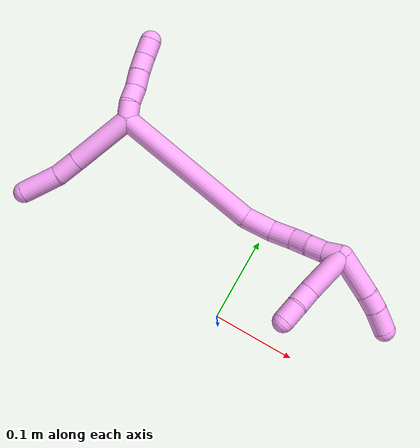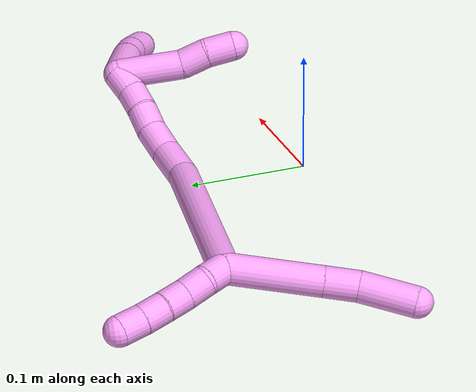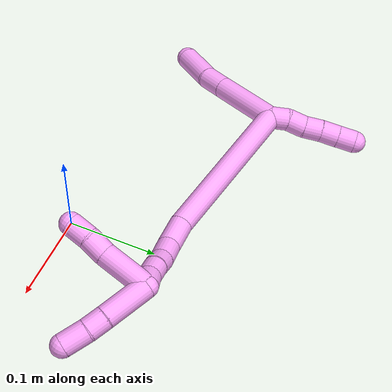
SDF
<sdf version="1.7">
 <world name="default">
  <model name="4">
   <static>0</static>
   <link name="4">
    <collision name="collision-cylinder-e_1_2_8">
     <pose>-0.009408 0.005322 -0.036533 -2.99694 -0.249535 2.09391</pose>
     <geometry><cylinder><radius>0.0125</radius><length>0.076197</length></cylinder></geometry>
     <surface>
      <friction><ode><mu>1.16</mu><mu2>1.16</mu2><slip1>0</slip1><slip2>0</slip2></ode></friction>
      <contact><ode><kp>1e+06</kp><kd>1</kd><max_vel>0</max_vel><min_depth>0.001</min_depth></ode></contact>
     </surface>
    </collision>
    <visual name="visual-cylinder-e_1_2_8">
     <pose>-0.009408 0.005322 -0.036533 -2.99694 -0.249535 2.09391</pose>
     <geometry><cylinder><radius>0.0125</radius><length>0.076197</length></cylinder></geometry>
     <material><ambient>1 0.65098 0.996078 1</ambient></material>
    </visual>
    <collision name="collision-cylinder-e_2_8_9">
     <pose>-0.022342 0.012481 -0.086254 -3.00317 -0.258755 2.16248</pose>
     <geometry><cylinder><radius>0.0125</radius><length>0.02755</length></cylinder></geometry>
     <surface>
      <friction><ode><mu>1.16</mu><mu2>1.16</mu2><slip1>0</slip1><slip2>0</slip2></ode></friction>
      <contact><ode><kp>1e+06</kp><kd>1</kd><max_vel>0</max_vel><min_depth>0.001</min_depth></ode></contact>
     </surface>
    </collision>
    <visual name="visual-cylinder-e_2_8_9">
     <pose>-0.022342 0.012481 -0.086254 -3.00317 -0.258755 2.16248</pose>
     <geometry><cylinder><radius>0.0125</radius><length>0.02755</length></cylinder></geometry>
     <material><ambient>1 0.65098 0.996078 1</ambient></material>
    </visual>
    <collision name="collision-cylinder-e_3_9_6">
     <pose>-0.036204 0.016364 -0.120029 -3.04251 -0.463422 2.72736</pose>
     <geometry><cylinder><radius>0.0125</radius><length>0.046254</length></cylinder></geometry>
     <surface>
      <friction><ode><mu>1.16</mu><mu2>1.16</mu2><slip1>0</slip1><slip2>0</slip2></ode></friction>
      <contact><ode><kp>1e+06</kp><kd>1</kd><max_vel>0</max_vel><min_depth>0.001</min_depth></ode></contact>
     </surface>
    </collision>
    <visual name="visual-cylinder-e_3_9_6">
     <pose>-0.036204 0.016364 -0.120029 -3.04251 -0.463422 2.72736</pose>
     <geometry><cylinder><radius>0.0125</radius><length>0.046254</length></cylinder></geometry>
     <material><ambient>1 0.65098 0.996078 1</ambient></material>
    </visual>
    <collision name="collision-cylinder-e_1_2_10">
     <pose>-0.005541 -0.001322 0.008219 0.159469 -0.587263 -0.048312</pose>
     <geometry><cylinder><radius>0.0125</radius><length>0.02</length></cylinder></geometry>
     <surface>
      <friction><ode><mu>1.16</mu><mu2>1.16</mu2><slip1>0</slip1><slip2>0</slip2></ode></friction>
      <contact><ode><kp>1e+06</kp><kd>1</kd><max_vel>0</max_vel><min_depth>0.001</min_depth></ode></contact>
     </surface>
    </collision>
    <visual name="visual-cylinder-e_1_2_10">
     <pose>-0.005541 -0.001322 0.008219 0.159469 -0.587263 -0.048312</pose>
     <geometry><cylinder><radius>0.0125</radius><length>0.02</length></cylinder></geometry>
     <material><ambient>1 0.65098 0.996078 1</ambient></material>
    </visual>
    <collision name="collision-cylinder-e_2_10_11">
     <pose>-0.015399 -0.00131 0.025359 -0.14836 -0.446414 0.033735</pose>
     <geometry><cylinder><radius>0.0125</radius><length>0.02</length></cylinder></geometry>
     <surface>
      <friction><ode><mu>1.16</mu><mu2>1.16</mu2><slip1>0</slip1><slip2>0</slip2></ode></friction>
      <contact><ode><kp>1e+06</kp><kd>1</kd><max_vel>0</max_vel><min_depth>0.001</min_depth></ode></contact>
     </surface>
    </collision>
    <visual name="visual-cylinder-e_2_10_11">
     <pose>-0.015399 -0.00131 0.025359 -0.14836 -0.446414 0.033735</pose>
     <geometry><cylinder><radius>0.0125</radius><length>0.02</length></cylinder></geometry>
     <material><ambient>1 0.65098 0.996078 1</ambient></material>
    </visual>
    <collision name="collision-cylinder-e_3_11_12">
     <pose>-0.024601 -0.00052 0.042989 0.062222 -0.510337 -0.016236</pose>
     <geometry><cylinder><radius>0.0125</radius><length>0.02</length></cylinder></geometry>
     <surface>
      <friction><ode><mu>1.16</mu><mu2>1.16</mu2><slip1>0</slip1><slip2>0</slip2></ode></friction>
      <contact><ode><kp>1e+06</kp><kd>1</kd><max_vel>0</max_vel><min_depth>0.001</min_depth></ode></contact>
     </surface>
    </collision>
    <visual name="visual-cylinder-e_3_11_12">
     <pose>-0.024601 -0.00052 0.042989 0.062222 -0.510337 -0.016236</pose>
     <geometry><cylinder><radius>0.0125</radius><length>0.02</length></cylinder></geometry>
     <material><ambient>1 0.65098 0.996078 1</ambient></material>
    </visual>
    <collision name="collision-cylinder-e_4_12_13">
     <pose>-0.033779 -0.000931 0.060728 -0.014575 -0.443761 0.003288</pose>
     <geometry><cylinder><radius>0.0125</radius><length>0.02</length></cylinder></geometry>
     <surface>
      <friction><ode><mu>1.16</mu><mu2>1.16</mu2><slip1>0</slip1><slip2>0</slip2></ode></friction>
      <contact><ode><kp>1e+06</kp><kd>1</kd><max_vel>0</max_vel><min_depth>0.001</min_depth></ode></contact>
     </surface>
    </collision>
    <visual name="visual-cylinder-e_4_12_13">
     <pose>-0.033779 -0.000931 0.060728 -0.014575 -0.443761 0.003288</pose>
     <geometry><cylinder><radius>0.0125</radius><length>0.02</length></cylinder></geometry>
     <material><ambient>1 0.65098 0.996078 1</ambient></material>
    </visual>
    <collision name="collision-cylinder-e_5_13_5">
     <pose>-0.041911 -0.001119 0.078987 0.034615 -0.393914 -0.006908</pose>
     <geometry><cylinder><radius>0.0125</radius><length>0.02</length></cylinder></geometry>
     <surface>
      <friction><ode><mu>1.16</mu><mu2>1.16</mu2><slip1>0</slip1><slip2>0</slip2></ode></friction>
      <contact><ode><kp>1e+06</kp><kd>1</kd><max_vel>0</max_vel><min_depth>0.001</min_depth></ode></contact>
     </surface>
    </collision>
    <visual name="visual-cylinder-e_5_13_5">
     <pose>-0.041911 -0.001119 0.078987 0.034615 -0.393914 -0.006908</pose>
     <geometry><cylinder><radius>0.0125</radius><length>0.02</length></cylinder></geometry>
     <material><ambient>1 0.65098 0.996078 1</ambient></material>
    </visual>
    <collision name="collision-cylinder-e_1_2_14">
     <pose>0.080152 0.03526 0.003339 -1.47639 1.15472 -1.06998</pose>
     <geometry><cylinder><radius>0.0125</radius><length>0.175257</length></cylinder></geometry>
     <surface>
      <friction><ode><mu>1.16</mu><mu2>1.16</mu2><slip1>0</slip1><slip2>0</slip2></ode></friction>
      <contact><ode><kp>1e+06</kp><kd>1</kd><max_vel>0</max_vel><min_depth>0.001</min_depth></ode></contact>
     </surface>
    </collision>
    <visual name="visual-cylinder-e_1_2_14">
     <pose>0.080152 0.03526 0.003339 -1.47639 1.15472 -1.06998</pose>
     <geometry><cylinder><radius>0.0125</radius><length>0.175257</length></cylinder></geometry>
     <material><ambient>1 0.65098 0.996078 1</ambient></material>
    </visual>
    <collision name="collision-cylinder-e_2_14_15">
     <pose>0.17683 0.074133 0.010859 -0.712552 1.24804 -0.523603</pose>
     <geometry><cylinder><radius>0.0125</radius><length>0.034851</length></cylinder></geometry>
     <surface>
      <friction><ode><mu>1.16</mu><mu2>1.16</mu2><slip1>0</slip1><slip2>0</slip2></ode></friction>
      <contact><ode><kp>1e+06</kp><kd>1</kd><max_vel>0</max_vel><min_depth>0.001</min_depth></ode></contact>
     </surface>
    </collision>
    <visual name="visual-cylinder-e_2_14_15">
     <pose>0.17683 0.074133 0.010859 -0.712552 1.24804 -0.523603</pose>
     <geometry><cylinder><radius>0.0125</radius><length>0.034851</length></cylinder></geometry>
     <material><ambient>1 0.65098 0.996078 1</ambient></material>
    </visual>
    <collision name="collision-cylinder-e_3_15_16">
     <pose>0.206334 0.077006 0.019215 0.175441 1.25515 0.127421</pose>
     <geometry><cylinder><radius>0.0125</radius><length>0.027306</length></cylinder></geometry>
     <surface>
      <friction><ode><mu>1.16</mu><mu2>1.16</mu2><slip1>0</slip1><slip2>0</slip2></ode></friction>
      <contact><ode><kp>1e+06</kp><kd>1</kd><max_vel>0</max_vel><min_depth>0.001</min_depth></ode></contact>
     </surface>
    </collision>
    <visual name="visual-cylinder-e_3_15_16">
     <pose>0.206334 0.077006 0.019215 0.175441 1.25515 0.127421</pose>
     <geometry><cylinder><radius>0.0125</radius><length>0.027306</length></cylinder></geometry>
     <material><ambient>1 0.65098 0.996078 1</ambient></material>
    </visual>
    <collision name="collision-cylinder-e_4_16_17">
     <pose>0.229431 0.073669 0.02572 0.839321 1.23858 0.615856</pose>
     <geometry><cylinder><radius>0.0125</radius><length>0.021406</length></cylinder></geometry>
     <surface>
      <friction><ode><mu>1.16</mu><mu2>1.16</mu2><slip1>0</slip1><slip2>0</slip2></ode></friction>
      <contact><ode><kp>1e+06</kp><kd>1</kd><max_vel>0</max_vel><min_depth>0.001</min_depth></ode></contact>
     </surface>
    </collision>
    <visual name="visual-cylinder-e_4_16_17">
     <pose>0.229431 0.073669 0.02572 0.839321 1.23858 0.615856</pose>
     <geometry><cylinder><radius>0.0125</radius><length>0.021406</length></cylinder></geometry>
     <material><ambient>1 0.65098 0.996078 1</ambient></material>
    </visual>
    <collision name="collision-cylinder-e_5_17_18">
     <pose>0.249361 0.069978 0.03072 0.388575 1.28499 0.292434</pose>
     <geometry><cylinder><radius>0.0125</radius><length>0.020456</length></cylinder></geometry>
     <surface>
      <friction><ode><mu>1.16</mu><mu2>1.16</mu2><slip1>0</slip1><slip2>0</slip2></ode></friction>
      <contact><ode><kp>1e+06</kp><kd>1</kd><max_vel>0</max_vel><min_depth>0.001</min_depth></ode></contact>
     </surface>
    </collision>
    <visual name="visual-cylinder-e_5_17_18">
     <pose>0.249361 0.069978 0.03072 0.388575 1.28499 0.292434</pose>
     <geometry><cylinder><radius>0.0125</radius><length>0.020456</length></cylinder></geometry>
     <material><ambient>1 0.65098 0.996078 1</ambient></material>
    </visual>
    <collision name="collision-cylinder-e_6_18_1">
     <pose>0.268407 0.066798 0.037606 0.459795 1.09942 0.284848</pose>
     <geometry><cylinder><radius>0.0125</radius><length>0.020724</length></cylinder></geometry>
     <surface>
      <friction><ode><mu>1.16</mu><mu2>1.16</mu2><slip1>0</slip1><slip2>0</slip2></ode></friction>
      <contact><ode><kp>1e+06</kp><kd>1</kd><max_vel>0</max_vel><min_depth>0.001</min_depth></ode></contact>
     </surface>
    </collision>
    <visual name="visual-cylinder-e_6_18_1">
     <pose>0.268407 0.066798 0.037606 0.459795 1.09942 0.284848</pose>
     <geometry><cylinder><radius>0.0125</radius><length>0.020724</length></cylinder></geometry>
     <material><ambient>1 0.65098 0.996078 1</ambient></material>
    </visual>
    <collision name="collision-cylinder-e_1_1_19">
     <pose>0.298908 0.077378 0.035646 -2.02441 0.9856 -1.41962</pose>
     <geometry><cylinder><radius>0.0125</radius><length>0.05103</length></cylinder></geometry>
     <surface>
      <friction><ode><mu>1.16</mu><mu2>1.16</mu2><slip1>0</slip1><slip2>0</slip2></ode></friction>
      <contact><ode><kp>1e+06</kp><kd>1</kd><max_vel>0</max_vel><min_depth>0.001</min_depth></ode></contact>
     </surface>
    </collision>
    <visual name="visual-cylinder-e_1_1_19">
     <pose>0.298908 0.077378 0.035646 -2.02441 0.9856 -1.41962</pose>
     <geometry><cylinder><radius>0.0125</radius><length>0.05103</length></cylinder></geometry>
     <material><ambient>1 0.65098 0.996078 1</ambient></material>
    </visual>
    <collision name="collision-cylinder-e_2_19_20">
     <pose>0.32854 0.095746 0.026498 -2.05141 0.915437 -1.3645</pose>
     <geometry><cylinder><radius>0.0125</radius><length>0.021097</length></cylinder></geometry>
     <surface>
      <friction><ode><mu>1.16</mu><mu2>1.16</mu2><slip1>0</slip1><slip2>0</slip2></ode></friction>
      <contact><ode><kp>1e+06</kp><kd>1</kd><max_vel>0</max_vel><min_depth>0.001</min_depth></ode></contact>
     </surface>
    </collision>
    <visual name="visual-cylinder-e_2_19_20">
     <pose>0.32854 0.095746 0.026498 -2.05141 0.915437 -1.3645</pose>
     <geometry><cylinder><radius>0.0125</radius><length>0.021097</length></cylinder></geometry>
     <material><ambient>1 0.65098 0.996078 1</ambient></material>
    </visual>
    <collision name="collision-cylinder-e_3_20_4">
     <pose>0.347005 0.109421 0.018178 -2.16158 0.810771 -1.35504</pose>
     <geometry><cylinder><radius>0.0125</radius><length>0.027873</length></cylinder></geometry>
     <surface>
      <friction><ode><mu>1.16</mu><mu2>1.16</mu2><slip1>0</slip1><slip2>0</slip2></ode></friction>
      <contact><ode><kp>1e+06</kp><kd>1</kd><max_vel>0</max_vel><min_depth>0.001</min_depth></ode></contact>
     </surface>
    </collision>
    <visual name="visual-cylinder-e_3_20_4">
     <pose>0.347005 0.109421 0.018178 -2.16158 0.810771 -1.35504</pose>
     <geometry><cylinder><radius>0.0125</radius><length>0.027873</length></cylinder></geometry>
     <material><ambient>1 0.65098 0.996078 1</ambient></material>
    </visual>
    <collision name="collision-cylinder-e_1_1_21">
     <pose>0.276762 0.063376 0.014934 3.09203 -0.03254 -1.16173</pose>
     <geometry><cylinder><radius>0.0125</radius><length>0.053872</length></cylinder></geometry>
     <surface>
      <friction><ode><mu>1.16</mu><mu2>1.16</mu2><slip1>0</slip1><slip2>0</slip2></ode></friction>
      <contact><ode><kp>1e+06</kp><kd>1</kd><max_vel>0</max_vel><min_depth>0.001</min_depth></ode></contact>
     </surface>
    </collision>
    <visual name="visual-cylinder-e_1_1_21">
     <pose>0.276762 0.063376 0.014934 3.09203 -0.03254 -1.16173</pose>
     <geometry><cylinder><radius>0.0125</radius><length>0.053872</length></cylinder></geometry>
     <material><ambient>1 0.65098 0.996078 1</ambient></material>
    </visual>
    <collision name="collision-cylinder-e_2_21_22">
     <pose>0.276872 0.058352 -0.022736 2.81186 0.086281 0.507712</pose>
     <geometry><cylinder><radius>0.0125</radius><length>0.022876</length></cylinder></geometry>
     <surface>
      <friction><ode><mu>1.16</mu><mu2>1.16</mu2><slip1>0</slip1><slip2>0</slip2></ode></friction>
      <contact><ode><kp>1e+06</kp><kd>1</kd><max_vel>0</max_vel><min_depth>0.001</min_depth></ode></contact>
     </surface>
    </collision>
    <visual name="visual-cylinder-e_2_21_22">
     <pose>0.276872 0.058352 -0.022736 2.81186 0.086281 0.507712</pose>
     <geometry><cylinder><radius>0.0125</radius><length>0.022876</length></cylinder></geometry>
     <material><ambient>1 0.65098 0.996078 1</ambient></material>
    </visual>
    <collision name="collision-cylinder-e_3_22_3">
     <pose>0.278314 0.053076 -0.045026 3.00459 0.039321 0.558228</pose>
     <geometry><cylinder><radius>0.0125</radius><length>0.023252</length></cylinder></geometry>
     <surface>
      <friction><ode><mu>1.16</mu><mu2>1.16</mu2><slip1>0</slip1><slip2>0</slip2></ode></friction>
      <contact><ode><kp>1e+06</kp><kd>1</kd><max_vel>0</max_vel><min_depth>0.001</min_depth></ode></contact>
     </surface>
    </collision>
    <visual name="visual-cylinder-e_3_22_3">
     <pose>0.278314 0.053076 -0.045026 3.00459 0.039321 0.558228</pose>
     <geometry><cylinder><radius>0.0125</radius><length>0.023252</length></cylinder></geometry>
     <material><ambient>1 0.65098 0.996078 1</ambient></material>
    </visual>
    <collision name="collision-sphere-3">
     <pose>0.278771 0.051489 -0.056534 0 -0 0</pose>
     <geometry><sphere><radius>0.0125</radius></sphere></geometry>
     <surface>
      <friction><ode><mu>1.16</mu><mu2>1.16</mu2><slip1>0</slip1><slip2>0</slip2></ode></friction>
      <contact><ode><kp>1e+06</kp><kd>1</kd><max_vel>0</max_vel><min_depth>0.001</min_depth></ode></contact>
     </surface>
    </collision>
    <visual name="visual-sphere-3">
     <pose>0.278771 0.051489 -0.056534 0 -0 0</pose>
     <geometry><sphere><radius>0.0125</radius></sphere></geometry>
     <material><ambient>1 0.65098 0.996078 1</ambient></material>
    </visual>
    <collision name="collision-sphere-22">
     <pose>0.277857 0.054662 -0.033518 0 -0 0</pose>
     <geometry><sphere><radius>0.0125</radius></sphere></geometry>
     <surface>
      <friction><ode><mu>1.16</mu><mu2>1.16</mu2><slip1>0</slip1><slip2>0</slip2></ode></friction>
      <contact><ode><kp>1e+06</kp><kd>1</kd><max_vel>0</max_vel><min_depth>0.001</min_depth></ode></contact>
     </surface>
    </collision>
    <visual name="visual-sphere-22">
     <pose>0.277857 0.054662 -0.033518 0 -0 0</pose>
     <geometry><sphere><radius>0.0125</radius></sphere></geometry>
     <material><ambient>1 0.65098 0.996078 1</ambient></material>
    </visual>
    <collision name="collision-sphere-21">
     <pose>0.275886 0.062042 -0.011955 0 -0 0</pose>
     <geometry><sphere><radius>0.0125</radius></sphere></geometry>
     <surface>
      <friction><ode><mu>1.16</mu><mu2>1.16</mu2><slip1>0</slip1><slip2>0</slip2></ode></friction>
      <contact><ode><kp>1e+06</kp><kd>1</kd><max_vel>0</max_vel><min_depth>0.001</min_depth></ode></contact>
     </surface>
    </collision>
    <visual name="visual-sphere-21">
     <pose>0.275886 0.062042 -0.011955 0 -0 0</pose>
     <geometry><sphere><radius>0.0125</radius></sphere></geometry>
     <material><ambient>1 0.65098 0.996078 1</ambient></material>
    </visual>
    <collision name="collision-sphere-4">
     <pose>0.357106 0.117395 0.01283 0 -0 0</pose>
     <geometry><sphere><radius>0.0125</radius></sphere></geometry>
     <surface>
      <friction><ode><mu>1.16</mu><mu2>1.16</mu2><slip1>0</slip1><slip2>0</slip2></ode></friction>
      <contact><ode><kp>1e+06</kp><kd>1</kd><max_vel>0</max_vel><min_depth>0.001</min_depth></ode></contact>
     </surface>
    </collision>
    <visual name="visual-sphere-4">
     <pose>0.357106 0.117395 0.01283 0 -0 0</pose>
     <geometry><sphere><radius>0.0125</radius></sphere></geometry>
     <material><ambient>1 0.65098 0.996078 1</ambient></material>
    </visual>
    <collision name="collision-sphere-20">
     <pose>0.336903 0.101447 0.023526 0 -0 0</pose>
     <geometry><sphere><radius>0.0125</radius></sphere></geometry>
     <surface>
      <friction><ode><mu>1.16</mu><mu2>1.16</mu2><slip1>0</slip1><slip2>0</slip2></ode></friction>
      <contact><ode><kp>1e+06</kp><kd>1</kd><max_vel>0</max_vel><min_depth>0.001</min_depth></ode></contact>
     </surface>
    </collision>
    <visual name="visual-sphere-20">
     <pose>0.336903 0.101447 0.023526 0 -0 0</pose>
     <geometry><sphere><radius>0.0125</radius></sphere></geometry>
     <material><ambient>1 0.65098 0.996078 1</ambient></material>
    </visual>
    <collision name="collision-sphere-11">
     <pose>-0.019716 2.3e-05 0.03428 0 -0 0</pose>
     <geometry><sphere><radius>0.0125</radius></sphere></geometry>
     <surface>
      <friction><ode><mu>1.16</mu><mu2>1.16</mu2><slip1>0</slip1><slip2>0</slip2></ode></friction>
      <contact><ode><kp>1e+06</kp><kd>1</kd><max_vel>0</max_vel><min_depth>0.001</min_depth></ode></contact>
     </surface>
    </collision>
    <visual name="visual-sphere-11">
     <pose>-0.019716 2.3e-05 0.03428 0 -0 0</pose>
     <geometry><sphere><radius>0.0125</radius></sphere></geometry>
     <material><ambient>1 0.65098 0.996078 1</ambient></material>
    </visual>
    <collision name="collision-sphere-10">
     <pose>-0.011082 -0.002644 0.016438 0 -0 0</pose>
     <geometry><sphere><radius>0.0125</radius></sphere></geometry>
     <surface>
      <friction><ode><mu>1.16</mu><mu2>1.16</mu2><slip1>0</slip1><slip2>0</slip2></ode></friction>
      <contact><ode><kp>1e+06</kp><kd>1</kd><max_vel>0</max_vel><min_depth>0.001</min_depth></ode></contact>
     </surface>
    </collision>
    <visual name="visual-sphere-10">
     <pose>-0.011082 -0.002644 0.016438 0 -0 0</pose>
     <geometry><sphere><radius>0.0125</radius></sphere></geometry>
     <material><ambient>1 0.65098 0.996078 1</ambient></material>
    </visual>
    <collision name="collision-sphere-6">
     <pose>-0.046542 0.018411 -0.140616 0 -0 0</pose>
     <geometry><sphere><radius>0.0125</radius></sphere></geometry>
     <surface>
      <friction><ode><mu>1.16</mu><mu2>1.16</mu2><slip1>0</slip1><slip2>0</slip2></ode></friction>
      <contact><ode><kp>1e+06</kp><kd>1</kd><max_vel>0</max_vel><min_depth>0.001</min_depth></ode></contact>
     </surface>
    </collision>
    <visual name="visual-sphere-6">
     <pose>-0.046542 0.018411 -0.140616 0 -0 0</pose>
     <geometry><sphere><radius>0.0125</radius></sphere></geometry>
     <material><ambient>1 0.65098 0.996078 1</ambient></material>
    </visual>
    <collision name="collision-sphere-9">
     <pose>-0.025866 0.014318 -0.099443 0 -0 0</pose>
     <geometry><sphere><radius>0.0125</radius></sphere></geometry>
     <surface>
      <friction><ode><mu>1.16</mu><mu2>1.16</mu2><slip1>0</slip1><slip2>0</slip2></ode></friction>
      <contact><ode><kp>1e+06</kp><kd>1</kd><max_vel>0</max_vel><min_depth>0.001</min_depth></ode></contact>
     </surface>
    </collision>
    <visual name="visual-sphere-9">
     <pose>-0.025866 0.014318 -0.099443 0 -0 0</pose>
     <geometry><sphere><radius>0.0125</radius></sphere></geometry>
     <material><ambient>1 0.65098 0.996078 1</ambient></material>
    </visual>
    <collision name="collision-sphere-2">
     <geometry><sphere><radius>0.0125</radius></sphere></geometry>
     <surface>
      <friction><ode><mu>1.16</mu><mu2>1.16</mu2><slip1>0</slip1><slip2>0</slip2></ode></friction>
      <contact><ode><kp>1e+06</kp><kd>1</kd><max_vel>0</max_vel><min_depth>0.001</min_depth></ode></contact>
     </surface>
    </collision>
    <visual name="visual-sphere-2">
     <geometry><sphere><radius>0.0125</radius></sphere></geometry>
     <material><ambient>1 0.65098 0.996078 1</ambient></material>
    </visual>
    <collision name="collision-sphere-19">
     <pose>0.320177 0.090046 0.02947 0 -0 0</pose>
     <geometry><sphere><radius>0.0125</radius></sphere></geometry>
     <surface>
      <friction><ode><mu>1.16</mu><mu2>1.16</mu2><slip1>0</slip1><slip2>0</slip2></ode></friction>
      <contact><ode><kp>1e+06</kp><kd>1</kd><max_vel>0</max_vel><min_depth>0.001</min_depth></ode></contact>
     </surface>
    </collision>
    <visual name="visual-sphere-19">
     <pose>0.320177 0.090046 0.02947 0 -0 0</pose>
     <geometry><sphere><radius>0.0125</radius></sphere></geometry>
     <material><ambient>1 0.65098 0.996078 1</ambient></material>
    </visual>
    <collision name="collision-sphere-8">
     <pose>-0.018817 0.010643 -0.073065 0 -0 0</pose>
     <geometry><sphere><radius>0.0125</radius></sphere></geometry>
     <surface>
      <friction><ode><mu>1.16</mu><mu2>1.16</mu2><slip1>0</slip1><slip2>0</slip2></ode></friction>
      <contact><ode><kp>1e+06</kp><kd>1</kd><max_vel>0</max_vel><min_depth>0.001</min_depth></ode></contact>
     </surface>
    </collision>
    <visual name="visual-sphere-8">
     <pose>-0.018817 0.010643 -0.073065 0 -0 0</pose>
     <geometry><sphere><radius>0.0125</radius></sphere></geometry>
     <material><ambient>1 0.65098 0.996078 1</ambient></material>
    </visual>
    <collision name="collision-sphere-12">
     <pose>-0.029486 -0.001062 0.051698 0 -0 0</pose>
     <geometry><sphere><radius>0.0125</radius></sphere></geometry>
     <surface>
      <friction><ode><mu>1.16</mu><mu2>1.16</mu2><slip1>0</slip1><slip2>0</slip2></ode></friction>
      <contact><ode><kp>1e+06</kp><kd>1</kd><max_vel>0</max_vel><min_depth>0.001</min_depth></ode></contact>
     </surface>
    </collision>
    <visual name="visual-sphere-12">
     <pose>-0.029486 -0.001062 0.051698 0 -0 0</pose>
     <geometry><sphere><radius>0.0125</radius></sphere></geometry>
     <material><ambient>1 0.65098 0.996078 1</ambient></material>
    </visual>
    <collision name="collision-sphere-13">
     <pose>-0.038073 -0.000799 0.069759 0 -0 0</pose>
     <geometry><sphere><radius>0.0125</radius></sphere></geometry>
     <surface>
      <friction><ode><mu>1.16</mu><mu2>1.16</mu2><slip1>0</slip1><slip2>0</slip2></ode></friction>
      <contact><ode><kp>1e+06</kp><kd>1</kd><max_vel>0</max_vel><min_depth>0.001</min_depth></ode></contact>
     </surface>
    </collision>
    <visual name="visual-sphere-13">
     <pose>-0.038073 -0.000799 0.069759 0 -0 0</pose>
     <geometry><sphere><radius>0.0125</radius></sphere></geometry>
     <material><ambient>1 0.65098 0.996078 1</ambient></material>
    </visual>
    <collision name="collision-sphere-5">
     <pose>-0.045749 -0.001438 0.088216 0 -0 0</pose>
     <geometry><sphere><radius>0.0125</radius></sphere></geometry>
     <surface>
      <friction><ode><mu>1.16</mu><mu2>1.16</mu2><slip1>0</slip1><slip2>0</slip2></ode></friction>
      <contact><ode><kp>1e+06</kp><kd>1</kd><max_vel>0</max_vel><min_depth>0.001</min_depth></ode></contact>
     </surface>
    </collision>
    <visual name="visual-sphere-5">
     <pose>-0.045749 -0.001438 0.088216 0 -0 0</pose>
     <geometry><sphere><radius>0.0125</radius></sphere></geometry>
     <material><ambient>1 0.65098 0.996078 1</ambient></material>
    </visual>
    <collision name="collision-sphere-14">
     <pose>0.160305 0.070519 0.006677 0 -0 0</pose>
     <geometry><sphere><radius>0.0125</radius></sphere></geometry>
     <surface>
      <friction><ode><mu>1.16</mu><mu2>1.16</mu2><slip1>0</slip1><slip2>0</slip2></ode></friction>
      <contact><ode><kp>1e+06</kp><kd>1</kd><max_vel>0</max_vel><min_depth>0.001</min_depth></ode></contact>
     </surface>
    </collision>
    <visual name="visual-sphere-14">
     <pose>0.160305 0.070519 0.006677 0 -0 0</pose>
     <geometry><sphere><radius>0.0125</radius></sphere></geometry>
     <material><ambient>1 0.65098 0.996078 1</ambient></material>
    </visual>
    <collision name="collision-sphere-15">
     <pose>0.193356 0.077746 0.015042 0 -0 0</pose>
     <geometry><sphere><radius>0.0125</radius></sphere></geometry>
     <surface>
      <friction><ode><mu>1.16</mu><mu2>1.16</mu2><slip1>0</slip1><slip2>0</slip2></ode></friction>
      <contact><ode><kp>1e+06</kp><kd>1</kd><max_vel>0</max_vel><min_depth>0.001</min_depth></ode></contact>
     </surface>
    </collision>
    <visual name="visual-sphere-15">
     <pose>0.193356 0.077746 0.015042 0 -0 0</pose>
     <geometry><sphere><radius>0.0125</radius></sphere></geometry>
     <material><ambient>1 0.65098 0.996078 1</ambient></material>
    </visual>
    <collision name="collision-sphere-16">
     <pose>0.219313 0.076266 0.023388 0 -0 0</pose>
     <geometry><sphere><radius>0.0125</radius></sphere></geometry>
     <surface>
      <friction><ode><mu>1.16</mu><mu2>1.16</mu2><slip1>0</slip1><slip2>0</slip2></ode></friction>
      <contact><ode><kp>1e+06</kp><kd>1</kd><max_vel>0</max_vel><min_depth>0.001</min_depth></ode></contact>
     </surface>
    </collision>
    <visual name="visual-sphere-16">
     <pose>0.219313 0.076266 0.023388 0 -0 0</pose>
     <geometry><sphere><radius>0.0125</radius></sphere></geometry>
     <material><ambient>1 0.65098 0.996078 1</ambient></material>
    </visual>
    <collision name="collision-sphere-17">
     <pose>0.239548 0.071071 0.028051 0 -0 0</pose>
     <geometry><sphere><radius>0.0125</radius></sphere></geometry>
     <surface>
      <friction><ode><mu>1.16</mu><mu2>1.16</mu2><slip1>0</slip1><slip2>0</slip2></ode></friction>
      <contact><ode><kp>1e+06</kp><kd>1</kd><max_vel>0</max_vel><min_depth>0.001</min_depth></ode></contact>
     </surface>
    </collision>
    <visual name="visual-sphere-17">
     <pose>0.239548 0.071071 0.028051 0 -0 0</pose>
     <geometry><sphere><radius>0.0125</radius></sphere></geometry>
     <material><ambient>1 0.65098 0.996078 1</ambient></material>
    </visual>
    <collision name="collision-sphere-18">
     <pose>0.259175 0.068886 0.033389 0 -0 0</pose>
     <geometry><sphere><radius>0.0125</radius></sphere></geometry>
     <surface>
      <friction><ode><mu>1.16</mu><mu2>1.16</mu2><slip1>0</slip1><slip2>0</slip2></ode></friction>
      <contact><ode><kp>1e+06</kp><kd>1</kd><max_vel>0</max_vel><min_depth>0.001</min_depth></ode></contact>
     </surface>
    </collision>
    <visual name="visual-sphere-18">
     <pose>0.259175 0.068886 0.033389 0 -0 0</pose>
     <geometry><sphere><radius>0.0125</radius></sphere></geometry>
     <material><ambient>1 0.65098 0.996078 1</ambient></material>
    </visual>
    <collision name="collision-sphere-1">
     <pose>0.277639 0.06471 0.041822 0 -0 0</pose>
     <geometry><sphere><radius>0.0125</radius></sphere></geometry>
     <surface>
      <friction><ode><mu>1.16</mu><mu2>1.16</mu2><slip1>0</slip1><slip2>0</slip2></ode></friction>
      <contact><ode><kp>1e+06</kp><kd>1</kd><max_vel>0</max_vel><min_depth>0.001</min_depth></ode></contact>
     </surface>
    </collision>
    <visual name="visual-sphere-1">
     <pose>0.277639 0.06471 0.041822 0 -0 0</pose>
     <geometry><sphere><radius>0.0125</radius></sphere></geometry>
     <material><ambient>1 0.65098 0.996078 1</ambient></material>
    </visual>
    <inertial>
     <pose>0.127411 0.042216 -0.00109 0 -0 0</pose>
     <mass>0.75</mass>
     <inertia>
      <ixx>-4.3e-05</ixx>
      <ixy>0</ixy>
      <ixz>0</ixz>
      <iyy>0.000303</iyy>
      <iyz>0</iyz>
      <izz>-0.000632</izz>
     </inertia>
    </inertial>
   </link>
   <pose>-0.202555 0.147773 0.034059 -1.65868 -0.373548 -0.17517</pose>
  </model>
 </world>
</sdf>
